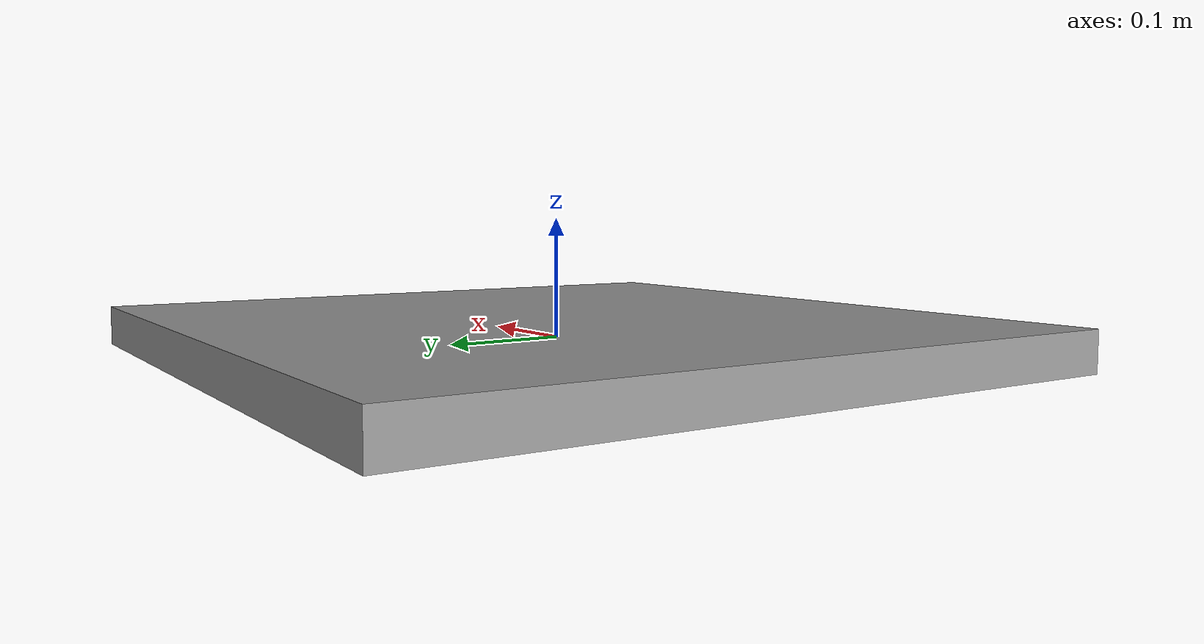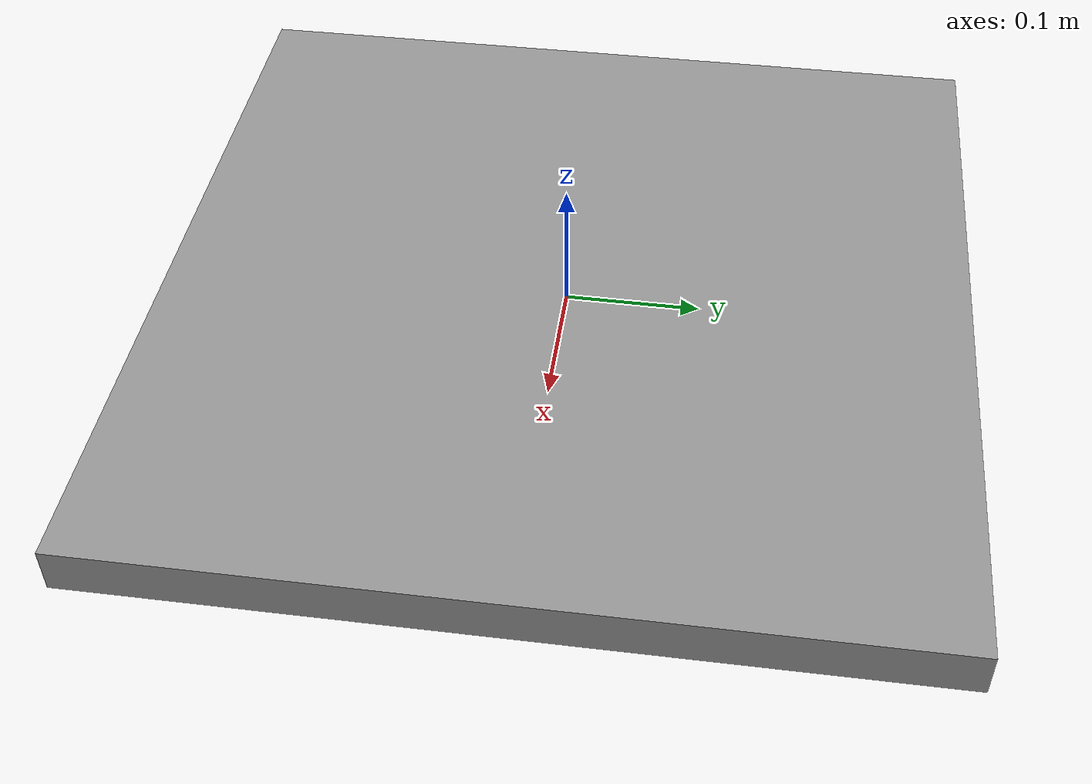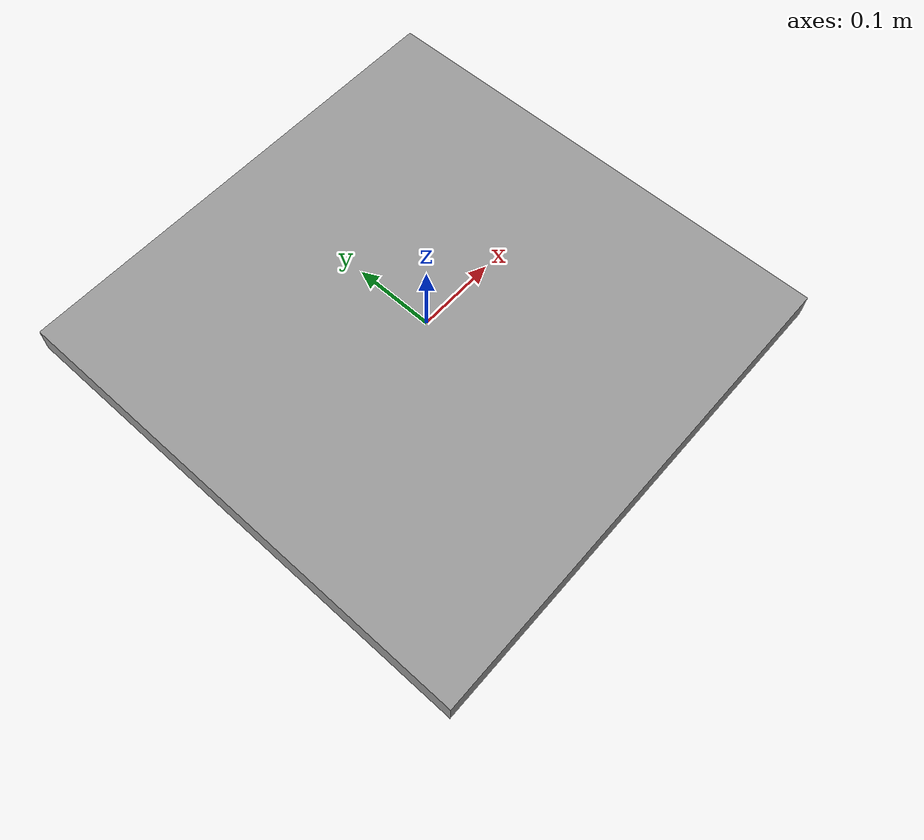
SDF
<?xml version="1.0" ?>
<sdf version="1.5">
  <model name="obstacle">
    <static>true</static>
    <link name="link">
      <inertial>
        <mass>1.5</mass>
          <inertia>
            <ixx>0.2</ixx>
            <ixy>0</ixy>
            <ixz>0</ixz>
            <iyy>0.2</iyy>
            <iyz>0</iyz>
            <izz>0.2</izz>
          </inertia>
      </inertial>
      <collision name="c1">
        <geometry>
          <box>
            <size>0.6 0.6 0.035</size>
          </box>
        </geometry>
      </collision>
      <visual name="v1">
        <geometry>
          <box>
            <size>0.6 0.6 0.035</size>
          </box>
        </geometry>
        <material>
          <script>
            <name>Gazebo/Grey</name>
            <uri>file://media/materials/scripts/gazebo.material</uri>
          </script>
        </material>
      </visual>
    </link>
  </model>
</sdf>
